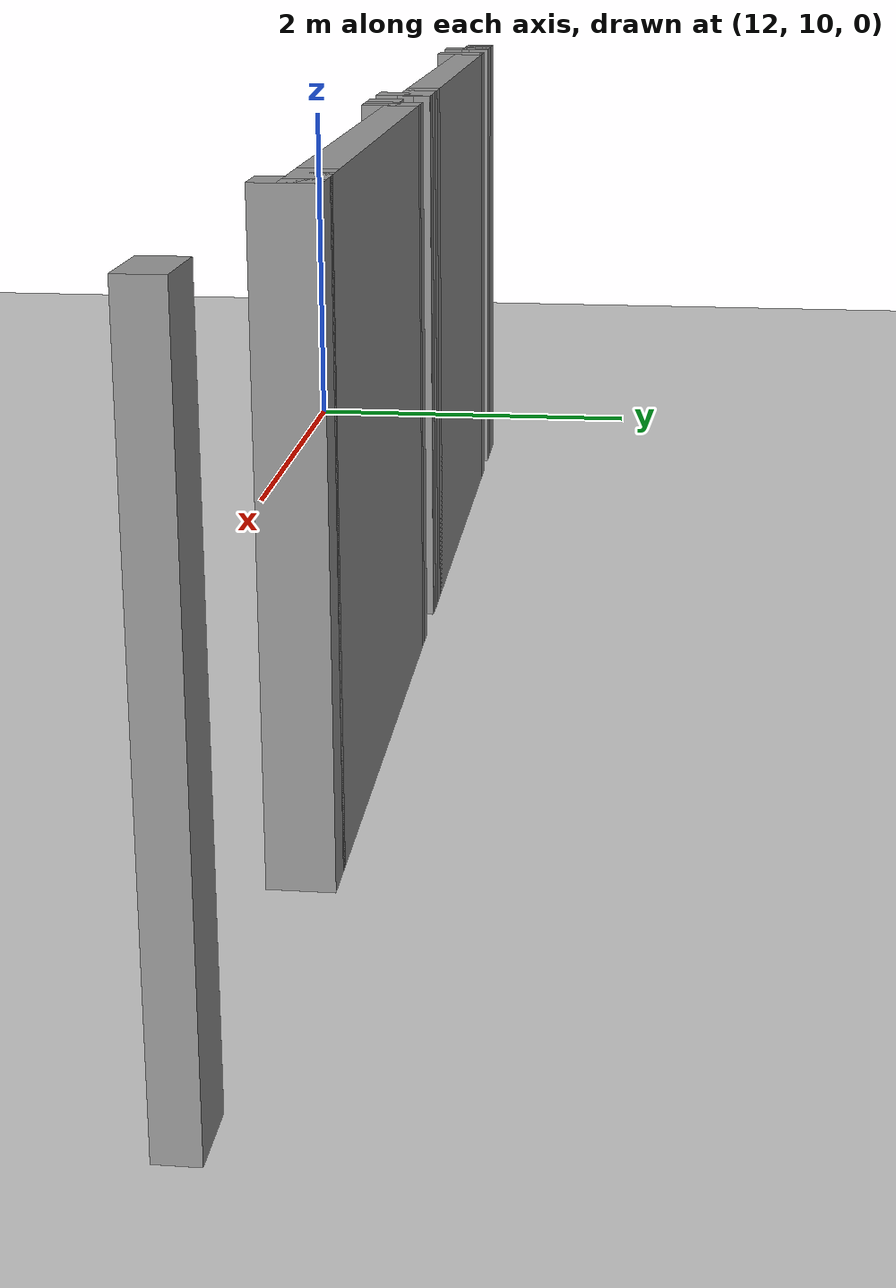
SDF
<sdf version="1.6">
 <world name="default">
  <model name="ground_plane">
   <static>1</static>
   <link name="link">
    <collision name="collision">
     <geometry><plane><normal>0 0 1</normal><size>100 100</size></plane></geometry>
     <surface><friction><ode><mu>100</mu><mu2>50</mu2></ode></friction></surface>
    </collision>
    <visual name="visual">
     <cast_shadows>0</cast_shadows>
     <geometry><plane><normal>0 0 1</normal><size>100 100</size></plane></geometry>
     <material>
      <script><uri>file://media/materials/scripts/gazebo.material</uri><name>Gazebo/Grey</name></script>
     </material>
    </visual>
   </link>
  </model>
  <model name="office_full">
   <pose>-0.417572 -0.704362 0 0 -0 0</pose>
   <link name="Wall_411">
    <collision name="Wall_411_Collision">
     <geometry><box><size>0.25 0.15 2.5</size></box></geometry>
     <pose>0 0 1.25 0 -0 0</pose>
    </collision>
    <visual name="Wall_411_Visual">
     <pose>0 0 1.25 0 -0 0</pose>
     <geometry><box><size>0.25 0.15 2.5</size></box></geometry>
     <material>
      <script><uri>file://media/materials/scripts/gazebo.material</uri><name>Gazebo/Grey</name></script>
      <ambient>1 1 1 1</ambient>
     </material>
    </visual>
    <pose>13.258 11.8397 0 0 -0 0</pose>
   </link>
   <link name="Wall_412">
    <collision name="Wall_412_Collision">
     <geometry><box><size>0.25 0.15 2.5</size></box></geometry>
     <pose>0 0 1.25 0 -0 0</pose>
    </collision>
    <visual name="Wall_412_Visual">
     <pose>0 0 1.25 0 -0 0</pose>
     <geometry><box><size>0.25 0.15 2.5</size></box></geometry>
     <material>
      <script><uri>file://media/materials/scripts/gazebo.material</uri><name>Gazebo/Grey</name></script>
      <ambient>1 1 1 1</ambient>
     </material>
    </visual>
    <pose>13.358 11.8397 0 0 -0 0</pose>
   </link>
   <link name="Wall_413">
    <collision name="Wall_413_Collision">
     <geometry><box><size>0.25 0.15 2.5</size></box></geometry>
     <pose>0 0 1.25 0 -0 0</pose>
    </collision>
    <visual name="Wall_413_Visual">
     <pose>0 0 1.25 0 -0 0</pose>
     <geometry><box><size>0.25 0.15 2.5</size></box></geometry>
     <material>
      <script><uri>file://media/materials/scripts/gazebo.material</uri><name>Gazebo/Grey</name></script>
      <ambient>1 1 1 1</ambient>
     </material>
    </visual>
    <pose>13.408 11.7897 0 0 0 -1.5708</pose>
   </link>
   <link name="Wall_415">
    <collision name="Wall_415_Collision">
     <geometry><box><size>0.25 0.15 2.5</size></box></geometry>
     <pose>0 0 1.25 0 -0 0</pose>
    </collision>
    <visual name="Wall_415_Visual">
     <pose>0 0 1.25 0 -0 0</pose>
     <geometry><box><size>0.25 0.15 2.5</size></box></geometry>
     <material>
      <script><uri>file://media/materials/scripts/gazebo.material</uri><name>Gazebo/Grey</name></script>
      <ambient>1 1 1 1</ambient>
     </material>
    </visual>
    <pose>13.758 11.7897 0 0 -0 1.5708</pose>
   </link>
   <link name="Wall_416">
    <collision name="Wall_416_Collision">
     <geometry><box><size>2.25 0.15 2.5</size></box></geometry>
     <pose>0 0 1.25 0 -0 0</pose>
    </collision>
    <visual name="Wall_416_Visual">
     <pose>0 0 1.25 0 -0 0</pose>
     <geometry><box><size>2.25 0.15 2.5</size></box></geometry>
     <material>
      <script><uri>file://media/materials/scripts/gazebo.material</uri><name>Gazebo/Grey</name></script>
      <ambient>1 1 1 1</ambient>
     </material>
    </visual>
    <pose>14.808 11.8397 0 0 -0 0</pose>
   </link>
   <link name="Wall_417">
    <collision name="Wall_417_Collision">
     <geometry><box><size>0.25 0.15 2.5</size></box></geometry>
     <pose>0 0 1.25 0 -0 0</pose>
    </collision>
    <visual name="Wall_417_Visual">
     <pose>0 0 1.25 0 -0 0</pose>
     <geometry><box><size>0.25 0.15 2.5</size></box></geometry>
     <material>
      <script><uri>file://media/materials/scripts/gazebo.material</uri><name>Gazebo/Grey</name></script>
      <ambient>1 1 1 1</ambient>
     </material>
    </visual>
    <pose>15.908 11.8397 0 0 -0 0</pose>
   </link>
   <link name="Wall_418">
    <collision name="Wall_418_Collision">
     <geometry><box><size>0.25 0.15 2.5</size></box></geometry>
     <pose>0 0 1.25 0 -0 0</pose>
    </collision>
    <visual name="Wall_418_Visual">
     <pose>0 0 1.25 0 -0 0</pose>
     <geometry><box><size>0.25 0.15 2.5</size></box></geometry>
     <material>
      <script><uri>file://media/materials/scripts/gazebo.material</uri><name>Gazebo/Grey</name></script>
      <ambient>1 1 1 1</ambient>
     </material>
    </visual>
    <pose>16.008 11.8397 0 0 -0 0</pose>
   </link>
   <link name="Wall_419">
    <collision name="Wall_419_Collision">
     <geometry><box><size>0.25 0.15 2.5</size></box></geometry>
     <pose>0 0 1.25 0 -0 0</pose>
    </collision>
    <visual name="Wall_419_Visual">
     <pose>0 0 1.25 0 -0 0</pose>
     <geometry><box><size>0.25 0.15 2.5</size></box></geometry>
     <material>
      <script><uri>file://media/materials/scripts/gazebo.material</uri><name>Gazebo/Grey</name></script>
      <ambient>1 1 1 1</ambient>
     </material>
    </visual>
    <pose>16.0568 11.7897 0 0 0 -1.59537</pose>
   </link>
   <link name="Wall_424">
    <collision name="Wall_424_Collision">
     <geometry><box><size>0.25 0.15 2.5</size></box></geometry>
     <pose>0 0 1.25 0 -0 0</pose>
    </collision>
    <visual name="Wall_424_Visual">
     <pose>0 0 1.25 0 -0 0</pose>
     <geometry><box><size>0.25 0.15 2.5</size></box></geometry>
     <material>
      <script><uri>file://media/materials/scripts/gazebo.material</uri><name>Gazebo/Grey</name></script>
      <ambient>1 1 1 1</ambient>
     </material>
    </visual>
    <pose>18.658 11.8397 0 0 -0 0</pose>
   </link>
   <link name="Wall_427">
    <collision name="Wall_427_Collision">
     <geometry><box><size>0.25 0.15 2.5</size></box></geometry>
     <pose>0 0 1.25 0 -0 0</pose>
    </collision>
    <visual name="Wall_427_Visual">
     <pose>0 0 1.25 0 -0 0</pose>
     <geometry><box><size>0.25 0.15 2.5</size></box></geometry>
     <material>
      <script><uri>file://media/materials/scripts/gazebo.material</uri><name>Gazebo/Grey</name></script>
      <ambient>1 1 1 1</ambient>
     </material>
    </visual>
    <pose>18.658 11.8397 0 0 -0 0</pose>
   </link>
   <link name="Wall_428">
    <collision name="Wall_428_Collision">
     <geometry><box><size>0.25 0.15 2.5</size></box></geometry>
     <pose>0 0 1.25 0 -0 0</pose>
    </collision>
    <visual name="Wall_428_Visual">
     <pose>0 0 1.25 0 -0 0</pose>
     <geometry><box><size>0.25 0.15 2.5</size></box></geometry>
     <material>
      <script><uri>file://media/materials/scripts/gazebo.material</uri><name>Gazebo/Grey</name></script>
      <ambient>1 1 1 1</ambient>
     </material>
    </visual>
    <pose>18.758 11.8397 0 0 -0 0</pose>
   </link>
   <link name="Wall_429">
    <collision name="Wall_429_Collision">
     <geometry><box><size>0.25 0.15 2.5</size></box></geometry>
     <pose>0 0 1.25 0 -0 0</pose>
    </collision>
    <visual name="Wall_429_Visual">
     <pose>0 0 1.25 0 -0 0</pose>
     <geometry><box><size>0.25 0.15 2.5</size></box></geometry>
     <material>
      <script><uri>file://media/materials/scripts/gazebo.material</uri><name>Gazebo/Grey</name></script>
      <ambient>1 1 1 1</ambient>
     </material>
    </visual>
    <pose>18.808 11.7897 0 0 0 -1.5708</pose>
   </link>
   <link name="Wall_432">
    <collision name="Wall_432_Collision">
     <geometry><box><size>0.25 0.15 2.5</size></box></geometry>
     <pose>0 0 1.25 0 -0 0</pose>
    </collision>
    <visual name="Wall_432_Visual">
     <pose>0 0 1.25 0 -0 0</pose>
     <geometry><box><size>0.25 0.15 2.5</size></box></geometry>
     <material>
      <script><uri>file://media/materials/scripts/gazebo.material</uri><name>Gazebo/Grey</name></script>
      <ambient>1 1 1 1</ambient>
     </material>
    </visual>
    <pose>20.308 11.7397 0 0 -0 0</pose>
   </link>
   <link name="Wall_472">
    <collision name="Wall_472_Collision">
     <geometry><box><size>0.25 0.15 2.5</size></box></geometry>
     <pose>0 0 1.25 0 -0 0</pose>
    </collision>
    <visual name="Wall_472_Visual">
     <pose>0 0 1.25 0 -0 0</pose>
     <geometry><box><size>0.25 0.15 2.5</size></box></geometry>
     <material>
      <script><uri>file://media/materials/scripts/gazebo.material</uri><name>Gazebo/Grey</name></script>
      <ambient>1 1 1 1</ambient>
     </material>
    </visual>
    <pose>16.058 11.7897 0 0 0 -1.5708</pose>
   </link>
   <link name="Wall_474">
    <collision name="Wall_474_Collision">
     <geometry><box><size>0.25 0.15 2.5</size></box></geometry>
     <pose>0 0 1.25 0 -0 0</pose>
    </collision>
    <visual name="Wall_474_Visual">
     <pose>0 0 1.25 0 -0 0</pose>
     <geometry><box><size>0.25 0.15 2.5</size></box></geometry>
     <material>
      <script><uri>file://media/materials/scripts/gazebo.material</uri><name>Gazebo/Grey</name></script>
      <ambient>1 1 1 1</ambient>
     </material>
    </visual>
    <pose>16.058 11.7897 0 0 0 -1.5708</pose>
   </link>
   <link name="Wall_480">
    <collision name="Wall_480_Collision">
     <geometry><box><size>0.27114 0.15 2.5</size></box></geometry>
     <pose>0 0 1.25 0 -0 0</pose>
    </collision>
    <visual name="Wall_480_Visual">
     <pose>0 0 1.25 0 -0 0</pose>
     <geometry><box><size>0.27114 0.15 2.5</size></box></geometry>
     <material>
      <script><uri>file://media/materials/scripts/gazebo.material</uri><name>Gazebo/Grey</name></script>
      <ambient>1 1 1 1</ambient>
     </material>
    </visual>
    <pose>16.4185 11.7405 0 0 -0 0.013417</pose>
   </link>
   <link name="Wall_481">
    <collision name="Wall_481_Collision">
     <geometry><box><size>0.25 0.15 2.5</size></box></geometry>
     <pose>0 0 1.25 0 -0 0</pose>
    </collision>
    <visual name="Wall_481_Visual">
     <pose>0 0 1.25 0 -0 0</pose>
     <geometry><box><size>0.25 0.15 2.5</size></box></geometry>
     <material>
      <script><uri>file://media/materials/scripts/gazebo.material</uri><name>Gazebo/Grey</name></script>
      <ambient>1 1 1 1</ambient>
     </material>
    </visual>
    <pose>16.4807 11.7913 0 0 -0 1.5708</pose>
   </link>
   <link name="Wall_483">
    <collision name="Wall_483_Collision">
     <geometry><box><size>0.25 0.15 2.5</size></box></geometry>
     <pose>0 0 1.25 0 -0 0</pose>
    </collision>
    <visual name="Wall_483_Visual">
     <pose>0 0 1.25 0 -0 0</pose>
     <geometry><box><size>0.25 0.15 2.5</size></box></geometry>
     <material>
      <script><uri>file://media/materials/scripts/gazebo.material</uri><name>Gazebo/Grey</name></script>
      <ambient>1 1 1 1</ambient>
     </material>
    </visual>
    <pose>16.4807 11.7913 0 0 -0 1.5708</pose>
   </link>
   <link name="Wall_484">
    <collision name="Wall_484_Collision">
     <geometry><box><size>2.37725 0.15 2.5</size></box></geometry>
     <pose>0 0 1.25 0 -0 0</pose>
    </collision>
    <visual name="Wall_484_Visual">
     <pose>0 0 1.25 0 -0 0</pose>
     <geometry><box><size>2.37725 0.15 2.5</size></box></geometry>
     <material>
      <script><uri>file://media/materials/scripts/gazebo.material</uri><name>Gazebo/Grey</name></script>
      <ambient>1 1 1 1</ambient>
     </material>
    </visual>
    <pose>17.5944 11.8405 0 0 0 -0.00073</pose>
   </link>
   <static>1</static>
  </model>
 </world>
</sdf>
